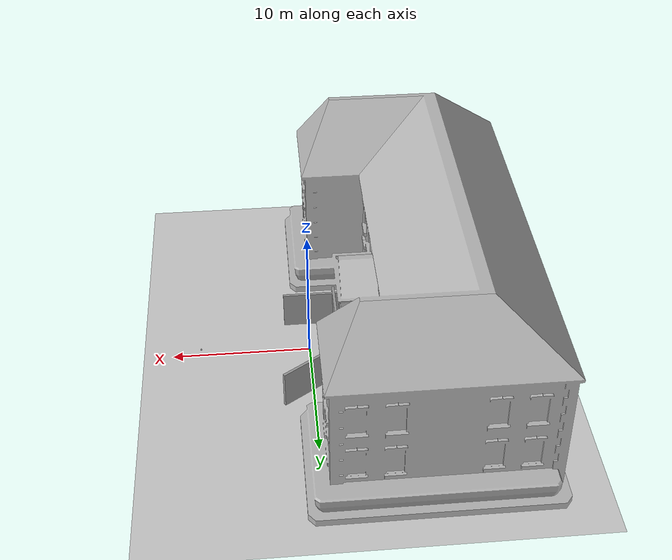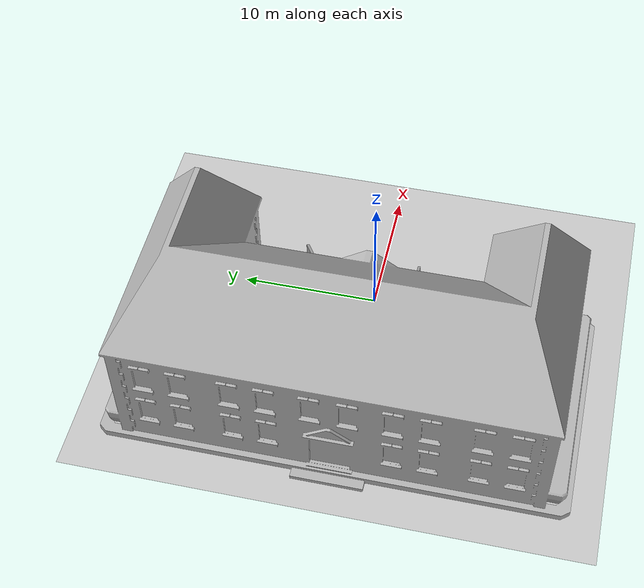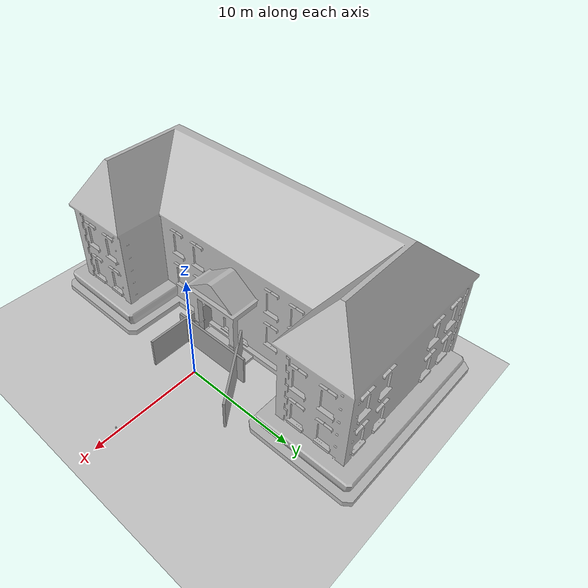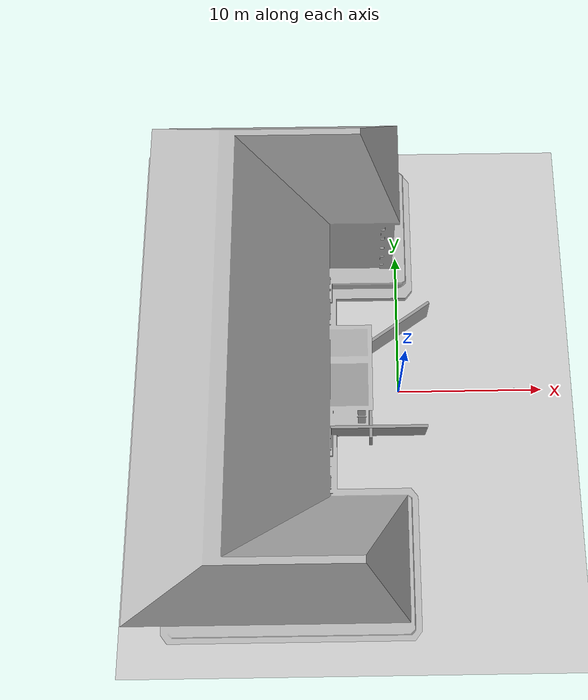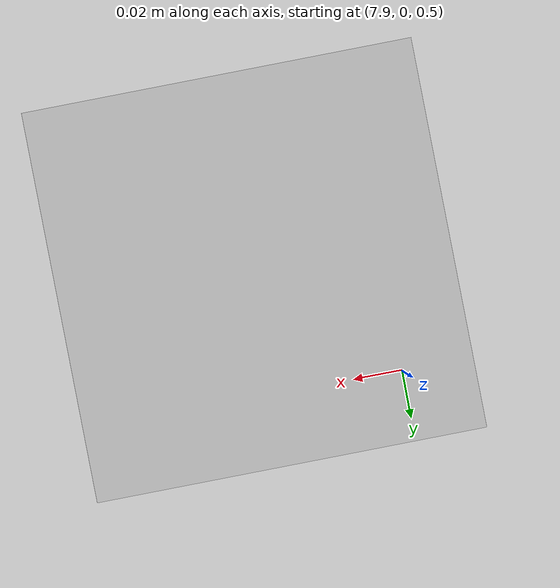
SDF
<sdf version="1.6">
 <world name="particle_emitters">
  <physics name="1ms" type="ode">
   <max_step_size>0.001</max_step_size>
   <real_time_factor>1.0</real_time_factor>
  </physics>
  <plugin filename="ignition-gazebo-physics-system" name="ignition::gazebo::systems::Physics"/>
  <plugin filename="ignition-gazebo-user-commands-system" name="ignition::gazebo::systems::UserCommands"/>
  <plugin filename="ignition-gazebo-sensors-system" name="ignition::gazebo::systems::Sensors">
   <render_engine>ogre2</render_engine>
  </plugin>
  <plugin filename="ignition-gazebo-scene-broadcaster-system" name="ignition::gazebo::systems::SceneBroadcaster"/>
  <light type="directional" name="sun">
   <pose>0 0 10 0 0 0</pose>
   <diffuse>1 1 1 1</diffuse>
   <specular>0.5 0.5 0.5 1</specular>
   <attenuation>
    <range>1000</range>
    <constant>0.9</constant>
    <linear>0.01</linear>
    <quadratic>0.001</quadratic>
   </attenuation>
   <direction>-0.5 0.1 -0.9</direction>
  </light>
  <model name="ground_plane">
   <static>true</static>
   <link name="link">
    <collision name="collision"><geometry><plane><normal>0 0 1</normal></plane></geometry></collision>
    <visual name="visual">
     <geometry><plane><normal>0 0 1</normal><size>100 100</size></plane></geometry>
     <material>
      <ambient>0.8 0.8 0.8 1</ambient>
      <diffuse>0.8 0.8 0.8 1</diffuse>
      <specular>0.8 0.8 0.8 1</specular>
     </material>
     <plugin filename="ignition-gazebo-thermal-system" name="ignition::gazebo::systems::Thermal">
      <temperature>50.0</temperature>
     </plugin>
    </visual>
   </link>
  </model>
  <model name="camera_with_lidar">
   <pose>8 0 0.5 0 0.0 3.14</pose>
   <link name="link">
    <pose>0.05 0.05 0.05 0 0 0</pose>
    <inertial>
     <mass>0.1</mass>
     <inertia><ixx>0.000166667</ixx><iyy>0.000166667</iyy><izz>0.000166667</izz></inertia>
    </inertial>
    <collision name="collision"><geometry><box><size>0.1 0.1 0.1</size></box></geometry></collision>
    <visual name="visual"><geometry><box><size>0.1 0.1 0.1</size></box></geometry></visual>
    <sensor name="camera" type="camera">
     <camera>
      <horizontal_fov>1.047</horizontal_fov>
      <image><width>320</width><height>240</height></image>
      <clip><near>0.1</near><far>100</far></clip>
     </camera>
     <always_on>1</always_on>
     <update_rate>30</update_rate>
     <visualize>true</visualize>
     <topic>camera</topic>
    </sensor>
    <sensor name="depth_camera1" type="depth_camera">
     <update_rate>10</update_rate>
     <topic>depth_camera</topic>
     <camera>
      <horizontal_fov>1.05</horizontal_fov>
      <image><width>320</width><height>240</height><format>R_FLOAT32</format></image>
      <clip><near>0.1</near><far>100.0</far></clip>
     </camera>
    </sensor>
    <sensor name="gpu_lidar" type="gpu_lidar">
     <topic>lidar</topic>
     <update_rate>10</update_rate>
     <ray>
      <scan>
       <horizontal>
        <samples>320</samples>
        <resolution>1</resolution>
        <min_angle>-1.396263</min_angle>
        <max_angle>1.396263</max_angle>
       </horizontal>
       <vertical>
        <samples>80</samples>
        <resolution>1</resolution>
        <min_angle>0</min_angle>
        <max_angle>0.8</max_angle>
       </vertical>
      </scan>
      <range><min>0.08</min><max>18.0</max><resolution>0.01</resolution></range>
     </ray>
     <alwaysOn>1</alwaysOn>
     <visualize>true</visualize>
    </sensor>
   </link>
   <static>true</static>
  </model>
  <model name="rgbd_camera">
   <pose>8 0 0.5 0 0.0 3.14</pose>
   <static>true</static>
   <link name="link">
    <pose>0.05 0.05 0.05 0 0 0</pose>
    <collision name="collision"><geometry><box><size>0.1 0.1 0.1</size></box></geometry></collision>
    <visual name="visual"><geometry><box><size>0.1 0.1 0.1</size></box></geometry></visual>
    <sensor name="rgbd_camera" type="rgbd_camera">
     <camera>
      <horizontal_fov>1.047</horizontal_fov>
      <image><width>320</width><height>240</height></image>
      <clip><near>0.1</near><far>100</far></clip>
     </camera>
     <always_on>1</always_on>
     <update_rate>30</update_rate>
     <visualize>true</visualize>
     <topic>rgbd_camera</topic>
    </sensor>
   </link>
   <static>true</static>
  </model>
  <model name="thermal_camera">
   <pose>8 0 0.5 0 0.0 3.14</pose>
   <static>true</static>
   <link name="link">
    <pose>0.05 0.05 0.05 0 0 0</pose>
    <collision name="collision"><geometry><box><size>0.1 0.1 0.1</size></box></geometry></collision>
    <visual name="visual"><geometry><box><size>0.1 0.1 0.1</size></box></geometry></visual>
    <sensor name="thermal_camera" type="thermal_camera">
     <camera>
      <horizontal_fov>1.047</horizontal_fov>
      <image><width>320</width><height>240</height></image>
      <clip><near>0.1</near><far>100</far></clip>
     </camera>
     <always_on>1</always_on>
     <update_rate>30</update_rate>
     <visualize>true</visualize>
     <topic>thermal_camera</topic>
    </sensor>
   </link>
  </model>
  <include><pose>-10 0 0 0 0 1.570796</pose><name>school</name><uri>./simulation_models/school/</uri></include>
  <include>
   <pose>-2 0 0 0 0 1.570796</pose>
   <name>grey_wall</name>
   <uri>./simulation_models/grey_wall/</uri>
  </include>
  <include>
   <pose>-2 -3 0 0 0 0</pose>
   <name>grey_wall_y</name>
   <uri>./simulation_models/grey_wall_cold/</uri>
  </include>
  <include>
   <pose>-1 3.5 0 0 0 0.6</pose>
   <name>grey_wall_y2</name>
   <uri>./simulation_models/grey_wall_cold/</uri>
  </include>
 </world>
</sdf>

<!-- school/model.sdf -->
<sdf version="1.6">
  <model name="school">
    <static>true</static>
    <link name="link">
      <collision name="collision">
        <geometry>
          <mesh>
            <uri>./meshes/school.dae</uri>
          </mesh>
        </geometry>
      </collision>
      <visual name="visual">
        <geometry>
          <mesh>
            <uri>./meshes/school.dae</uri>
          </mesh>
        </geometry>
      </visual>
    </link>
  </model>
</sdf>

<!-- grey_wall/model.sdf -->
<sdf version="1.5">
  <model name="grey_wall">
    <static>true</static>
    <link name="link">
      <pose>0 0 1.4 0 0 0</pose>
      <collision name="collision">
        <geometry>
          <box>
            <size>7.5 0.2 2.8</size>
          </box>
        </geometry>
      </collision>
      <visual name="visual">
        <cast_shadows>false</cast_shadows>
        <geometry>
          <box>
            <size>7.5 0.2 2.8</size>
          </box>
        </geometry>
        <material>
          <script>
            <uri>model://grey_wall/materials/scripts</uri>
            <uri>model://grey_wall/materials/textures</uri>
            <name>vrc/grey_wall</name>
          </script>
        </material>
        <plugin
            filename="ignition-gazebo-thermal-system"
            name="ignition::gazebo::systems::Thermal">
            <temperature>210.0</temperature>
        </plugin>
      </visual>
    </link>
  </model>
</sdf>

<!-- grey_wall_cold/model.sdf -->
<sdf version="1.5">
  <model name="grey_wall">
    <static>true</static>
    <link name="link">
      <pose>0 0 1.4 0 0 0</pose>
      <collision name="collision">
        <geometry>
          <box>
            <size>7.5 0.2 2.8</size>
          </box>
        </geometry>
      </collision>
      <visual name="visual">
        <cast_shadows>false</cast_shadows>
        <geometry>
          <box>
            <size>7.5 0.2 2.8</size>
          </box>
        </geometry>
        <material>
          <script>
            <uri>model://grey_wall/materials/scripts</uri>
            <uri>model://grey_wall/materials/textures</uri>
            <name>vrc/grey_wall</name>
          </script>
        </material>
        <plugin
            filename="ignition-gazebo-thermal-system"
            name="ignition::gazebo::systems::Thermal">
            <temperature>150.0</temperature>
        </plugin>
      </visual>
    </link>
  </model>
</sdf>
